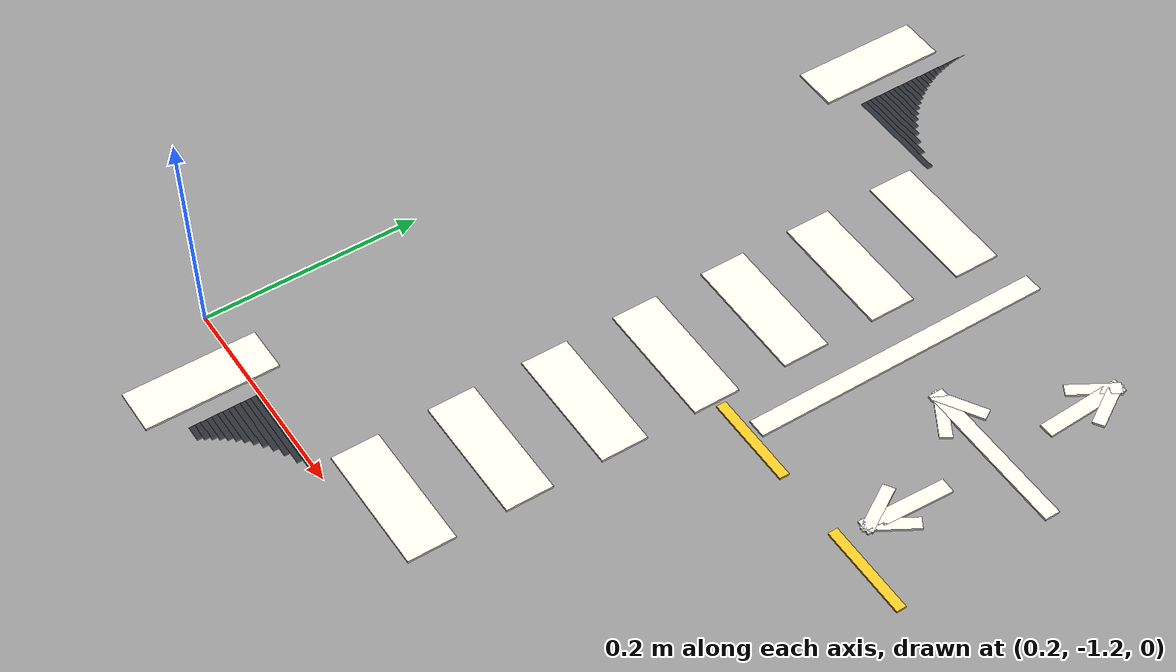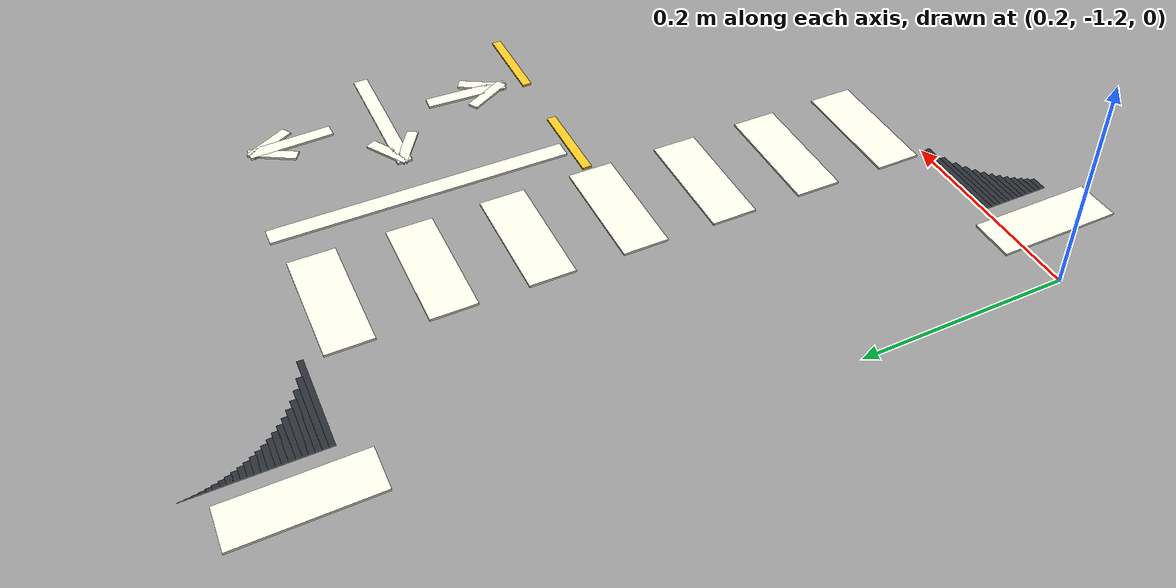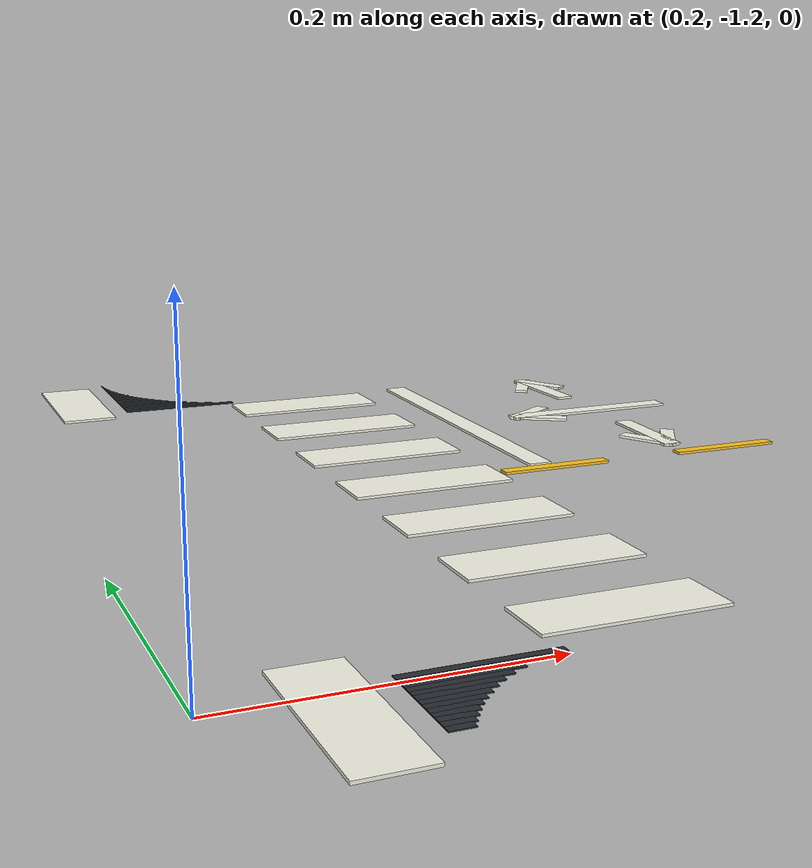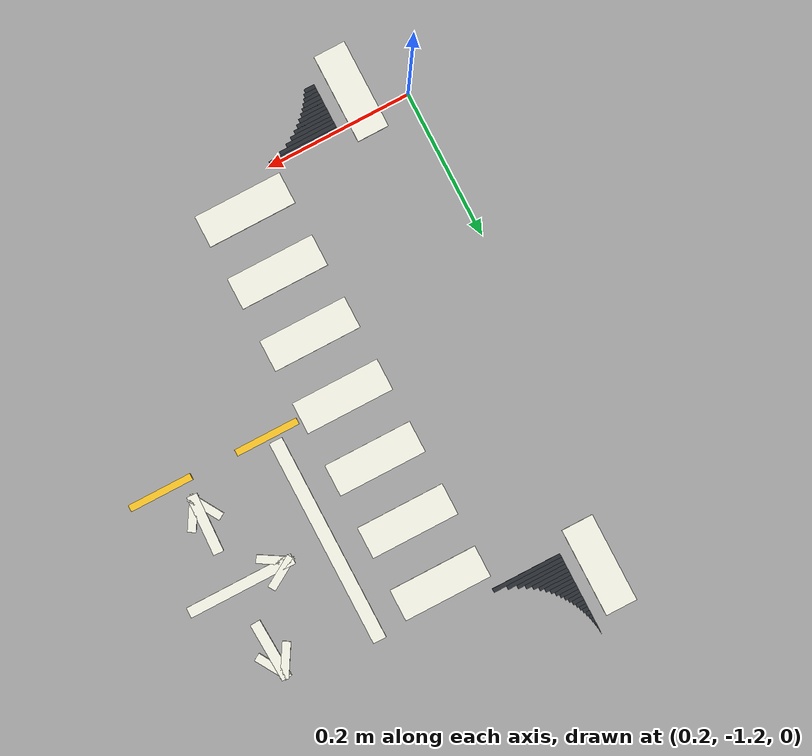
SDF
<sdf version="1.6">
 <world name="sandbox">
  <include><uri>model://sun</uri></include>
  <model name="cross_corner_0.3_-0.5999999999999999_00">
   <static>true</static>
   <pose>0.347817 -0.597500 0.004350 0.000000 0.000000 0.000000</pose>
   <link name="body">
    <visual name="visual">
     <geometry><box><size>0.095633 0.005500 0.000700</size></box></geometry>
     <material><ambient>0.16 0.18 0.20 1</ambient><diffuse>0.16 0.18 0.20 1</diffuse></material>
    </visual>
   </link>
  </model>
  <model name="cross_corner_0.3_-0.5999999999999999_01">
   <static>true</static>
   <pose>0.339121 -0.592500 0.004350 0.000000 0.000000 0.000000</pose>
   <link name="body">
    <visual name="visual">
     <geometry><box><size>0.078242 0.005500 0.000700</size></box></geometry>
     <material><ambient>0.16 0.18 0.20 1</ambient><diffuse>0.16 0.18 0.20 1</diffuse></material>
    </visual>
   </link>
  </model>
  <model name="cross_corner_0.3_-0.5999999999999999_02">
   <static>true</static>
   <pose>0.333337 -0.587500 0.004350 0.000000 0.000000 0.000000</pose>
   <link name="body">
    <visual name="visual">
     <geometry><box><size>0.066673 0.005500 0.000700</size></box></geometry>
     <material><ambient>0.16 0.18 0.20 1</ambient><diffuse>0.16 0.18 0.20 1</diffuse></material>
    </visual>
   </link>
  </model>
  <model name="cross_corner_0.3_-0.5999999999999999_03">
   <static>true</static>
   <pose>0.328800 -0.582500 0.004350 0.000000 0.000000 0.000000</pose>
   <link name="body">
    <visual name="visual">
     <geometry><box><size>0.057600 0.005500 0.000700</size></box></geometry>
     <material><ambient>0.16 0.18 0.20 1</ambient><diffuse>0.16 0.18 0.20 1</diffuse></material>
    </visual>
   </link>
  </model>
  <model name="cross_corner_0.3_-0.5999999999999999_04">
   <static>true</static>
   <pose>0.325022 -0.577500 0.004350 0.000000 0.000000 0.000000</pose>
   <link name="body">
    <visual name="visual">
     <geometry><box><size>0.050045 0.005500 0.000700</size></box></geometry>
     <material><ambient>0.16 0.18 0.20 1</ambient><diffuse>0.16 0.18 0.20 1</diffuse></material>
    </visual>
   </link>
  </model>
  <model name="cross_corner_0.3_-0.5999999999999999_05">
   <static>true</static>
   <pose>0.321778 -0.572500 0.004350 0.000000 0.000000 0.000000</pose>
   <link name="body">
    <visual name="visual">
     <geometry><box><size>0.043556 0.005500 0.000700</size></box></geometry>
     <material><ambient>0.16 0.18 0.20 1</ambient><diffuse>0.16 0.18 0.20 1</diffuse></material>
    </visual>
   </link>
  </model>
  <model name="cross_corner_0.3_-0.5999999999999999_06">
   <static>true</static>
   <pose>0.318940 -0.567500 0.004350 0.000000 0.000000 0.000000</pose>
   <link name="body">
    <visual name="visual">
     <geometry><box><size>0.037880 0.005500 0.000700</size></box></geometry>
     <material><ambient>0.16 0.18 0.20 1</ambient><diffuse>0.16 0.18 0.20 1</diffuse></material>
    </visual>
   </link>
  </model>
  <model name="cross_corner_0.3_-0.5999999999999999_07">
   <static>true</static>
   <pose>0.316429 -0.562500 0.004350 0.000000 0.000000 0.000000</pose>
   <link name="body">
    <visual name="visual">
     <geometry><box><size>0.032858 0.005500 0.000700</size></box></geometry>
     <material><ambient>0.16 0.18 0.20 1</ambient><diffuse>0.16 0.18 0.20 1</diffuse></material>
    </visual>
   </link>
  </model>
  <model name="cross_corner_0.3_-0.5999999999999999_08">
   <static>true</static>
   <pose>0.314191 -0.557500 0.004350 0.000000 0.000000 0.000000</pose>
   <link name="body">
    <visual name="visual">
     <geometry><box><size>0.028383 0.005500 0.000700</size></box></geometry>
     <material><ambient>0.16 0.18 0.20 1</ambient><diffuse>0.16 0.18 0.20 1</diffuse></material>
    </visual>
   </link>
  </model>
  <model name="cross_corner_0.3_-0.5999999999999999_09">
   <static>true</static>
   <pose>0.312189 -0.552500 0.004350 0.000000 0.000000 0.000000</pose>
   <link name="body">
    <visual name="visual">
     <geometry><box><size>0.024377 0.005500 0.000700</size></box></geometry>
     <material><ambient>0.16 0.18 0.20 1</ambient><diffuse>0.16 0.18 0.20 1</diffuse></material>
    </visual>
   </link>
  </model>
  <model name="cross_corner_0.3_-0.5999999999999999_10">
   <static>true</static>
   <pose>0.310392 -0.547500 0.004350 0.000000 0.000000 0.000000</pose>
   <link name="body">
    <visual name="visual">
     <geometry><box><size>0.020784 0.005500 0.000700</size></box></geometry>
     <material><ambient>0.16 0.18 0.20 1</ambient><diffuse>0.16 0.18 0.20 1</diffuse></material>
    </visual>
   </link>
  </model>
  <model name="cross_corner_0.3_-0.5999999999999999_11">
   <static>true</static>
   <pose>0.308780 -0.542500 0.004350 0.000000 0.000000 0.000000</pose>
   <link name="body">
    <visual name="visual">
     <geometry><box><size>0.017561 0.005500 0.000700</size></box></geometry>
     <material><ambient>0.16 0.18 0.20 1</ambient><diffuse>0.16 0.18 0.20 1</diffuse></material>
    </visual>
   </link>
  </model>
  <model name="cross_corner_0.3_-0.5999999999999999_12">
   <static>true</static>
   <pose>0.307337 -0.537500 0.004350 0.000000 0.000000 0.000000</pose>
   <link name="body">
    <visual name="visual">
     <geometry><box><size>0.014673 0.005500 0.000700</size></box></geometry>
     <material><ambient>0.16 0.18 0.20 1</ambient><diffuse>0.16 0.18 0.20 1</diffuse></material>
    </visual>
   </link>
  </model>
  <model name="cross_corner_0.3_-0.5999999999999999_13">
   <static>true</static>
   <pose>0.306047 -0.532500 0.004350 0.000000 0.000000 0.000000</pose>
   <link name="body">
    <visual name="visual">
     <geometry><box><size>0.012094 0.005500 0.000700</size></box></geometry>
     <material><ambient>0.16 0.18 0.20 1</ambient><diffuse>0.16 0.18 0.20 1</diffuse></material>
    </visual>
   </link>
  </model>
  <model name="cross_corner_0.3_-0.5999999999999999_14">
   <static>true</static>
   <pose>0.304901 -0.527500 0.004350 0.000000 0.000000 0.000000</pose>
   <link name="body">
    <visual name="visual">
     <geometry><box><size>0.009801 0.005500 0.000700</size></box></geometry>
     <material><ambient>0.16 0.18 0.20 1</ambient><diffuse>0.16 0.18 0.20 1</diffuse></material>
    </visual>
   </link>
  </model>
  <model name="cross_corner_0.3_-0.5999999999999999_15">
   <static>true</static>
   <pose>0.303889 -0.522500 0.004350 0.000000 0.000000 0.000000</pose>
   <link name="body">
    <visual name="visual">
     <geometry><box><size>0.007778 0.005500 0.000700</size></box></geometry>
     <material><ambient>0.16 0.18 0.20 1</ambient><diffuse>0.16 0.18 0.20 1</diffuse></material>
    </visual>
   </link>
  </model>
  <model name="cross_corner_0.3_-0.5999999999999999_16">
   <static>true</static>
   <pose>0.303005 -0.517500 0.004350 0.000000 0.000000 0.000000</pose>
   <link name="body">
    <visual name="visual">
     <geometry><box><size>0.006010 0.005500 0.000700</size></box></geometry>
     <material><ambient>0.16 0.18 0.20 1</ambient><diffuse>0.16 0.18 0.20 1</diffuse></material>
    </visual>
   </link>
  </model>
  <model name="cross_corner_0.3_-0.5999999999999999_17">
   <static>true</static>
   <pose>0.302242 -0.512500 0.004350 0.000000 0.000000 0.000000</pose>
   <link name="body">
    <visual name="visual">
     <geometry><box><size>0.004485 0.005500 0.000700</size></box></geometry>
     <material><ambient>0.16 0.18 0.20 1</ambient><diffuse>0.16 0.18 0.20 1</diffuse></material>
    </visual>
   </link>
  </model>
  <model name="cross_corner_0.3_-0.5999999999999999_18">
   <static>true</static>
   <pose>0.301597 -0.507500 0.004350 0.000000 0.000000 0.000000</pose>
   <link name="body">
    <visual name="visual">
     <geometry><box><size>0.003194 0.005500 0.000700</size></box></geometry>
     <material><ambient>0.16 0.18 0.20 1</ambient><diffuse>0.16 0.18 0.20 1</diffuse></material>
    </visual>
   </link>
  </model>
  <model name="cross_corner_0.3_-0.5999999999999999_19">
   <static>true</static>
   <pose>0.301064 -0.502500 0.004350 0.000000 0.000000 0.000000</pose>
   <link name="body">
    <visual name="visual">
     <geometry><box><size>0.002128 0.005500 0.000700</size></box></geometry>
     <material><ambient>0.16 0.18 0.20 1</ambient><diffuse>0.16 0.18 0.20 1</diffuse></material>
    </visual>
   </link>
  </model>
  <model name="cross_corner_0.3_-0.5999999999999999_20">
   <static>true</static>
   <pose>0.300641 -0.497500 0.004350 0.000000 0.000000 0.000000</pose>
   <link name="body">
    <visual name="visual">
     <geometry><box><size>0.001283 0.005500 0.000700</size></box></geometry>
     <material><ambient>0.16 0.18 0.20 1</ambient><diffuse>0.16 0.18 0.20 1</diffuse></material>
    </visual>
   </link>
  </model>
  <model name="cross_corner_0.3_-0.5999999999999999_21">
   <static>true</static>
   <pose>0.300326 -0.492500 0.004350 0.000000 0.000000 0.000000</pose>
   <link name="body">
    <visual name="visual">
     <geometry><box><size>0.000653 0.005500 0.000700</size></box></geometry>
     <material><ambient>0.16 0.18 0.20 1</ambient><diffuse>0.16 0.18 0.20 1</diffuse></material>
    </visual>
   </link>
  </model>
  <model name="cross_corner_0.3_-0.5999999999999999_22">
   <static>true</static>
   <pose>0.300117 -0.487500 0.004350 0.000000 0.000000 0.000000</pose>
   <link name="body">
    <visual name="visual">
     <geometry><box><size>0.000235 0.005500 0.000700</size></box></geometry>
     <material><ambient>0.16 0.18 0.20 1</ambient><diffuse>0.16 0.18 0.20 1</diffuse></material>
    </visual>
   </link>
  </model>
  <model name="cross_corner_0.3_-1.2_00">
   <static>true</static>
   <pose>0.347817 -1.202500 0.004350 0.000000 0.000000 0.000000</pose>
   <link name="body">
    <visual name="visual">
     <geometry><box><size>0.095633 0.005500 0.000700</size></box></geometry>
     <material><ambient>0.16 0.18 0.20 1</ambient><diffuse>0.16 0.18 0.20 1</diffuse></material>
    </visual>
   </link>
  </model>
  <model name="cross_corner_0.3_-1.2_01">
   <static>true</static>
   <pose>0.339121 -1.207500 0.004350 0.000000 0.000000 0.000000</pose>
   <link name="body">
    <visual name="visual">
     <geometry><box><size>0.078242 0.005500 0.000700</size></box></geometry>
     <material><ambient>0.16 0.18 0.20 1</ambient><diffuse>0.16 0.18 0.20 1</diffuse></material>
    </visual>
   </link>
  </model>
  <model name="cross_corner_0.3_-1.2_02">
   <static>true</static>
   <pose>0.333337 -1.212500 0.004350 0.000000 0.000000 0.000000</pose>
   <link name="body">
    <visual name="visual">
     <geometry><box><size>0.066673 0.005500 0.000700</size></box></geometry>
     <material><ambient>0.16 0.18 0.20 1</ambient><diffuse>0.16 0.18 0.20 1</diffuse></material>
    </visual>
   </link>
  </model>
  <model name="cross_corner_0.3_-1.2_03">
   <static>true</static>
   <pose>0.328800 -1.217500 0.004350 0.000000 0.000000 0.000000</pose>
   <link name="body">
    <visual name="visual">
     <geometry><box><size>0.057600 0.005500 0.000700</size></box></geometry>
     <material><ambient>0.16 0.18 0.20 1</ambient><diffuse>0.16 0.18 0.20 1</diffuse></material>
    </visual>
   </link>
  </model>
  <model name="cross_corner_0.3_-1.2_04">
   <static>true</static>
   <pose>0.325022 -1.222500 0.004350 0.000000 0.000000 0.000000</pose>
   <link name="body">
    <visual name="visual">
     <geometry><box><size>0.050045 0.005500 0.000700</size></box></geometry>
     <material><ambient>0.16 0.18 0.20 1</ambient><diffuse>0.16 0.18 0.20 1</diffuse></material>
    </visual>
   </link>
  </model>
  <model name="cross_corner_0.3_-1.2_05">
   <static>true</static>
   <pose>0.321778 -1.227500 0.004350 0.000000 0.000000 0.000000</pose>
   <link name="body">
    <visual name="visual">
     <geometry><box><size>0.043556 0.005500 0.000700</size></box></geometry>
     <material><ambient>0.16 0.18 0.20 1</ambient><diffuse>0.16 0.18 0.20 1</diffuse></material>
    </visual>
   </link>
  </model>
  <model name="cross_corner_0.3_-1.2_06">
   <static>true</static>
   <pose>0.318940 -1.232500 0.004350 0.000000 0.000000 0.000000</pose>
   <link name="body">
    <visual name="visual">
     <geometry><box><size>0.037880 0.005500 0.000700</size></box></geometry>
     <material><ambient>0.16 0.18 0.20 1</ambient><diffuse>0.16 0.18 0.20 1</diffuse></material>
    </visual>
   </link>
  </model>
  <model name="cross_corner_0.3_-1.2_07">
   <static>true</static>
   <pose>0.316429 -1.237500 0.004350 0.000000 0.000000 0.000000</pose>
   <link name="body">
    <visual name="visual">
     <geometry><box><size>0.032858 0.005500 0.000700</size></box></geometry>
     <material><ambient>0.16 0.18 0.20 1</ambient><diffuse>0.16 0.18 0.20 1</diffuse></material>
    </visual>
   </link>
  </model>
  <model name="cross_corner_0.3_-1.2_08">
   <static>true</static>
   <pose>0.314191 -1.242500 0.004350 0.000000 0.000000 0.000000</pose>
   <link name="body">
    <visual name="visual">
     <geometry><box><size>0.028383 0.005500 0.000700</size></box></geometry>
     <material><ambient>0.16 0.18 0.20 1</ambient><diffuse>0.16 0.18 0.20 1</diffuse></material>
    </visual>
   </link>
  </model>
  <model name="cross_corner_0.3_-1.2_09">
   <static>true</static>
   <pose>0.312189 -1.247500 0.004350 0.000000 0.000000 0.000000</pose>
   <link name="body">
    <visual name="visual">
     <geometry><box><size>0.024377 0.005500 0.000700</size></box></geometry>
     <material><ambient>0.16 0.18 0.20 1</ambient><diffuse>0.16 0.18 0.20 1</diffuse></material>
    </visual>
   </link>
  </model>
  <model name="cross_corner_0.3_-1.2_10">
   <static>true</static>
   <pose>0.310392 -1.252500 0.004350 0.000000 0.000000 0.000000</pose>
   <link name="body">
    <visual name="visual">
     <geometry><box><size>0.020784 0.005500 0.000700</size></box></geometry>
     <material><ambient>0.16 0.18 0.20 1</ambient><diffuse>0.16 0.18 0.20 1</diffuse></material>
    </visual>
   </link>
  </model>
  <model name="cross_corner_0.3_-1.2_11">
   <static>true</static>
   <pose>0.308780 -1.257500 0.004350 0.000000 0.000000 0.000000</pose>
   <link name="body">
    <visual name="visual">
     <geometry><box><size>0.017561 0.005500 0.000700</size></box></geometry>
     <material><ambient>0.16 0.18 0.20 1</ambient><diffuse>0.16 0.18 0.20 1</diffuse></material>
    </visual>
   </link>
  </model>
  <model name="cross_corner_0.3_-1.2_12">
   <static>true</static>
   <pose>0.307337 -1.262500 0.004350 0.000000 0.000000 0.000000</pose>
   <link name="body">
    <visual name="visual">
     <geometry><box><size>0.014673 0.005500 0.000700</size></box></geometry>
     <material><ambient>0.16 0.18 0.20 1</ambient><diffuse>0.16 0.18 0.20 1</diffuse></material>
    </visual>
   </link>
  </model>
  <model name="horiz_center_11">
   <static>true</static>
   <pose>0.557500 -0.900000 0.006000 0.000000 -0.000000 0.000000</pose>
   <link name="body">
    <visual name="visual">
     <geometry><box><size>0.087000 0.009000 0.002000</size></box></geometry>
     <material><ambient>0.98 0.77 0.14 1</ambient><diffuse>0.98 0.77 0.14 1</diffuse></material>
    </visual>
   </link>
  </model>
  <model name="horiz_center_12">
   <static>true</static>
   <pose>0.707500 -0.900000 0.006000 0.000000 -0.000000 0.000000</pose>
   <link name="body">
    <visual name="visual">
     <geometry><box><size>0.087000 0.009000 0.002000</size></box></geometry>
     <material><ambient>0.98 0.77 0.14 1</ambient><diffuse>0.98 0.77 0.14 1</diffuse></material>
    </visual>
   </link>
  </model>
  <model name="zebra_north_6">
   <static>true</static>
   <pose>0.263000 -0.565000 0.006000 0.000000 0.000000 0.000000</pose>
   <link name="body">
    <visual name="visual">
     <geometry><box><size>0.043000 0.120000 0.002000</size></box></geometry>
     <material><ambient>0.96 0.96 0.90 1</ambient><diffuse>0.96 0.96 0.90 1</diffuse></material>
    </visual>
   </link>
  </model>
  <model name="zebra_south_6">
   <static>true</static>
   <pose>0.263000 -1.235000 0.006000 0.000000 0.000000 0.000000</pose>
   <link name="body">
    <visual name="visual">
     <geometry><box><size>0.043000 0.120000 0.002000</size></box></geometry>
     <material><ambient>0.96 0.96 0.90 1</ambient><diffuse>0.96 0.96 0.90 1</diffuse></material>
    </visual>
   </link>
  </model>
  <model name="zebra_east_0">
   <static>true</static>
   <pose>0.450000 -1.165000 0.006000 0.000000 0.000000 0.000000</pose>
   <link name="body">
    <visual name="visual">
     <geometry><box><size>0.120000 0.043000 0.002000</size></box></geometry>
     <material><ambient>0.96 0.96 0.90 1</ambient><diffuse>0.96 0.96 0.90 1</diffuse></material>
    </visual>
   </link>
  </model>
  <model name="zebra_east_1">
   <static>true</static>
   <pose>0.450000 -1.077000 0.006000 0.000000 0.000000 0.000000</pose>
   <link name="body">
    <visual name="visual">
     <geometry><box><size>0.120000 0.043000 0.002000</size></box></geometry>
     <material><ambient>0.96 0.96 0.90 1</ambient><diffuse>0.96 0.96 0.90 1</diffuse></material>
    </visual>
   </link>
  </model>
  <model name="zebra_east_2">
   <static>true</static>
   <pose>0.450000 -0.989000 0.006000 0.000000 0.000000 0.000000</pose>
   <link name="body">
    <visual name="visual">
     <geometry><box><size>0.120000 0.043000 0.002000</size></box></geometry>
     <material><ambient>0.96 0.96 0.90 1</ambient><diffuse>0.96 0.96 0.90 1</diffuse></material>
    </visual>
   </link>
  </model>
  <model name="zebra_east_3">
   <static>true</static>
   <pose>0.450000 -0.901000 0.006000 0.000000 0.000000 0.000000</pose>
   <link name="body">
    <visual name="visual">
     <geometry><box><size>0.120000 0.043000 0.002000</size></box></geometry>
     <material><ambient>0.96 0.96 0.90 1</ambient><diffuse>0.96 0.96 0.90 1</diffuse></material>
    </visual>
   </link>
  </model>
  <model name="zebra_east_4">
   <static>true</static>
   <pose>0.450000 -0.813000 0.006000 0.000000 0.000000 0.000000</pose>
   <link name="body">
    <visual name="visual">
     <geometry><box><size>0.120000 0.043000 0.002000</size></box></geometry>
     <material><ambient>0.96 0.96 0.90 1</ambient><diffuse>0.96 0.96 0.90 1</diffuse></material>
    </visual>
   </link>
  </model>
  <model name="zebra_east_5">
   <static>true</static>
   <pose>0.450000 -0.725000 0.006000 0.000000 0.000000 0.000000</pose>
   <link name="body">
    <visual name="visual">
     <geometry><box><size>0.120000 0.043000 0.002000</size></box></geometry>
     <material><ambient>0.96 0.96 0.90 1</ambient><diffuse>0.96 0.96 0.90 1</diffuse></material>
    </visual>
   </link>
  </model>
  <model name="zebra_east_6">
   <static>true</static>
   <pose>0.450000 -0.637000 0.006000 0.000000 0.000000 0.000000</pose>
   <link name="body">
    <visual name="visual">
     <geometry><box><size>0.120000 0.043000 0.002000</size></box></geometry>
     <material><ambient>0.96 0.96 0.90 1</ambient><diffuse>0.96 0.96 0.90 1</diffuse></material>
    </visual>
   </link>
  </model>
  <model name="stop_east">
   <static>true</static>
   <pose>0.550000 -0.750000 0.006000 0.000000 -0.000000 1.570796</pose>
   <link name="body">
    <visual name="visual">
     <geometry><box><size>0.282000 0.018000 0.002000</size></box></geometry>
     <material><ambient>0.96 0.96 0.90 1</ambient><diffuse>0.96 0.96 0.90 1</diffuse></material>
    </visual>
   </link>
  </model>
  <model name="cross_from_east_straight">
   <static>true</static>
   <pose>0.672500 -0.750000 0.006000 0.000000 -0.000000 3.141593</pose>
   <link name="body">
    <visual name="visual">
     <geometry><box><size>0.147000 0.014000 0.002000</size></box></geometry>
     <material><ambient>0.96 0.96 0.90 1</ambient><diffuse>0.96 0.96 0.90 1</diffuse></material>
    </visual>
   </link>
  </model>
  <model name="cross_from_east_straight_head_-1">
   <static>true</static>
   <pose>0.620000 -0.741000 0.006000 0.000000 -0.000000 -2.601173</pose>
   <link name="body">
    <visual name="visual">
     <geometry><box><size>0.046986 0.011000 0.002000</size></box></geometry>
     <material><ambient>0.96 0.96 0.90 1</ambient><diffuse>0.96 0.96 0.90 1</diffuse></material>
    </visual>
   </link>
  </model>
  <model name="cross_from_east_straight_head_1">
   <static>true</static>
   <pose>0.620000 -0.759000 0.006000 0.000000 -0.000000 2.601173</pose>
   <link name="body">
    <visual name="visual">
     <geometry><box><size>0.046986 0.011000 0.002000</size></box></geometry>
     <material><ambient>0.96 0.96 0.90 1</ambient><diffuse>0.96 0.96 0.90 1</diffuse></material>
    </visual>
   </link>
  </model>
  <model name="cross_from_east_left_turn">
   <static>true</static>
   <pose>0.676500 -0.839000 0.006000 0.000000 -0.000000 -1.614885</pose>
   <link name="body">
    <visual name="visual">
     <geometry><box><size>0.080066 0.014000 0.002000</size></box></geometry>
     <material><ambient>0.96 0.96 0.90 1</ambient><diffuse>0.96 0.96 0.90 1</diffuse></material>
    </visual>
   </link>
  </model>
  <model name="cross_from_east_left_head_-1">
   <static>true</static>
   <pose>0.666000 -0.858000 0.006000 0.000000 -0.000000 -1.030377</pose>
   <link name="body">
    <visual name="visual">
     <geometry><box><size>0.046986 0.011000 0.002000</size></box></geometry>
     <material><ambient>0.96 0.96 0.90 1</ambient><diffuse>0.96 0.96 0.90 1</diffuse></material>
    </visual>
   </link>
  </model>
  <model name="cross_from_east_left_head_1">
   <static>true</static>
   <pose>0.684000 -0.858000 0.006000 0.000000 -0.000000 -2.111216</pose>
   <link name="body">
    <visual name="visual">
     <geometry><box><size>0.046986 0.011000 0.002000</size></box></geometry>
     <material><ambient>0.96 0.96 0.90 1</ambient><diffuse>0.96 0.96 0.90 1</diffuse></material>
    </visual>
   </link>
  </model>
  <model name="cross_from_east_right_turn">
   <static>true</static>
   <pose>0.676500 -0.661000 0.006000 0.000000 -0.000000 1.614885</pose>
   <link name="body">
    <visual name="visual">
     <geometry><box><size>0.080066 0.014000 0.002000</size></box></geometry>
     <material><ambient>0.96 0.96 0.90 1</ambient><diffuse>0.96 0.96 0.90 1</diffuse></material>
    </visual>
   </link>
  </model>
  <model name="cross_from_east_right_head_-1">
   <static>true</static>
   <pose>0.684000 -0.642000 0.006000 0.000000 -0.000000 2.111216</pose>
   <link name="body">
    <visual name="visual">
     <geometry><box><size>0.046986 0.011000 0.002000</size></box></geometry>
     <material><ambient>0.96 0.96 0.90 1</ambient><diffuse>0.96 0.96 0.90 1</diffuse></material>
    </visual>
   </link>
  </model>
  <model name="cross_from_east_right_head_1">
   <static>true</static>
   <pose>0.666000 -0.642000 0.006000 0.000000 -0.000000 1.030377</pose>
   <link name="body">
    <visual name="visual">
     <geometry><box><size>0.046986 0.011000 0.002000</size></box></geometry>
     <material><ambient>0.96 0.96 0.90 1</ambient><diffuse>0.96 0.96 0.90 1</diffuse></material>
    </visual>
   </link>
  </model>
 </world>
</sdf>
